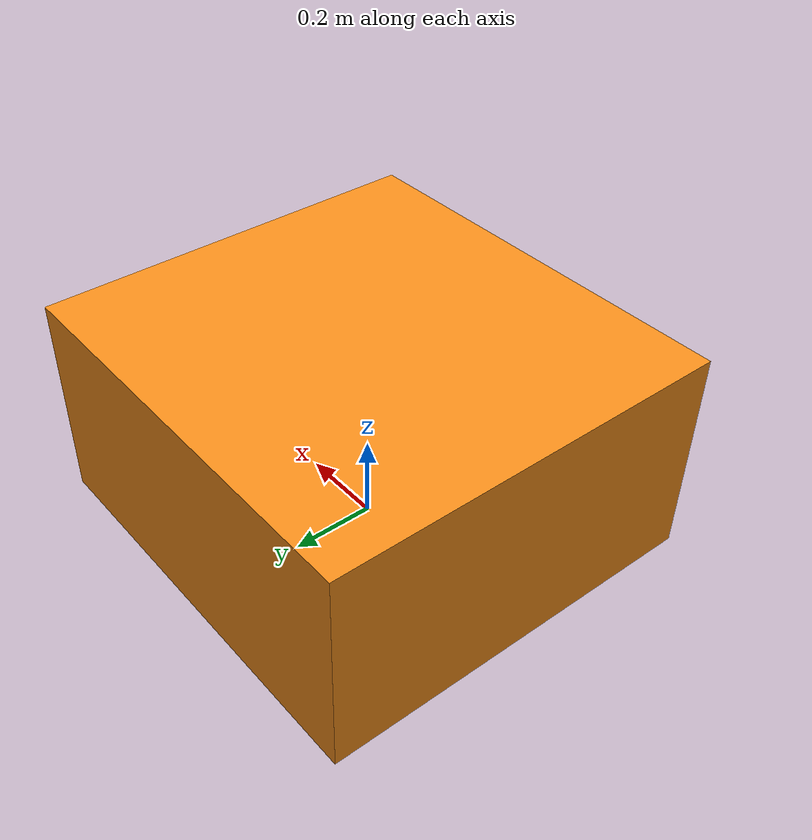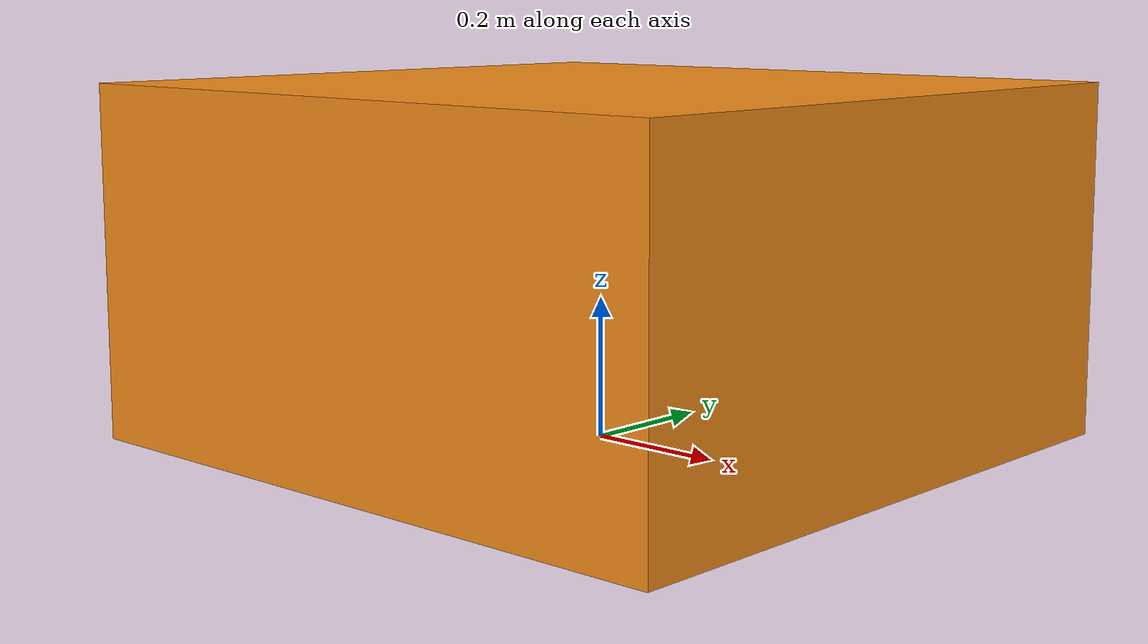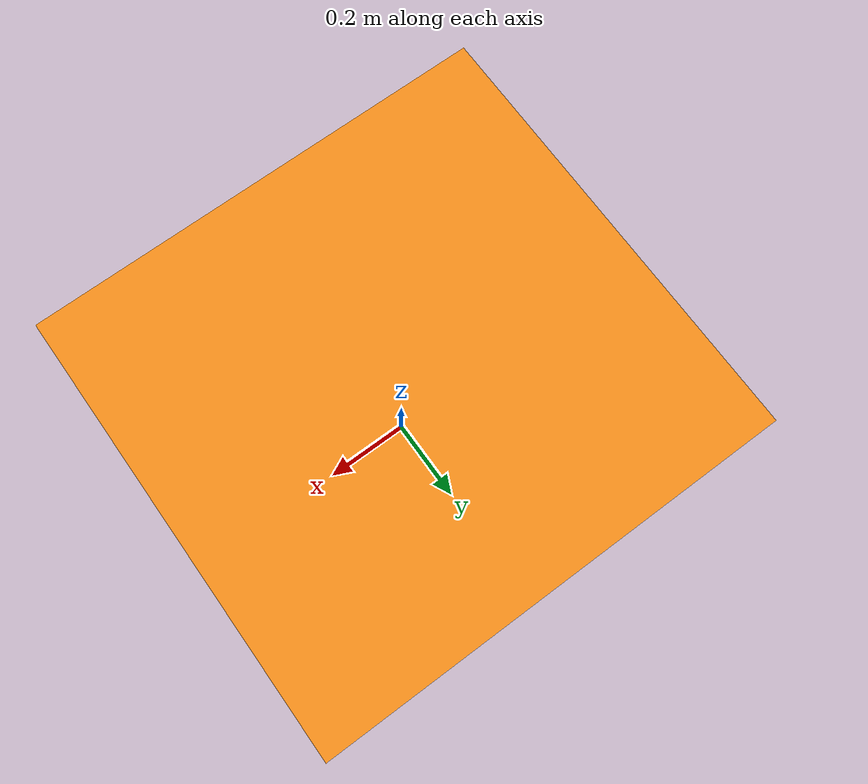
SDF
<?xml version='1.0'?>
<sdf version='1.6'>
  <model name='caution_100cm_block'>
    <static>1</static>
    <pose frame=''>0 0 0 0 0 0</pose>
    <static>1</static>
    <link name='Block'>
      <collision name='Block_Collision'>
        <geometry>
          <box>
            <size>1.0 0.95 0.5</size>
          </box>
        </geometry>
        <pose frame=''>0 0 0.25 0 -0 0</pose>
      </collision>
      <visual name='Block_Visual'>
        <pose frame=''>0 0 0.25 0 -0 0</pose>
        <geometry>
          <box>
            <size>1.0 0.95 0.5</size>
          </box>
        </geometry>
        <material>
          <script>
            <uri>file://media/materials/scripts/caution.material</uri>
            <name>Caution/Orange4</name>
          </script>
           <ambient>1 1 1 1</ambient>
        </material>
      </visual>
      <pose frame=''>0 0 0 0 -0 0</pose>
    </link>
  </model>
</sdf>
